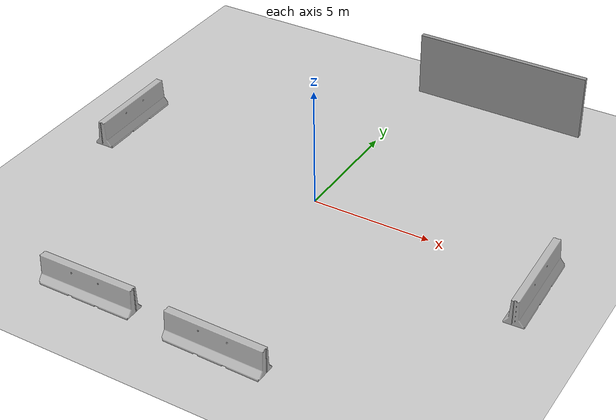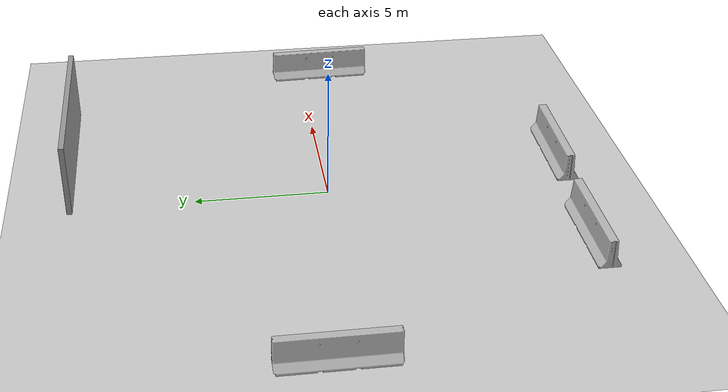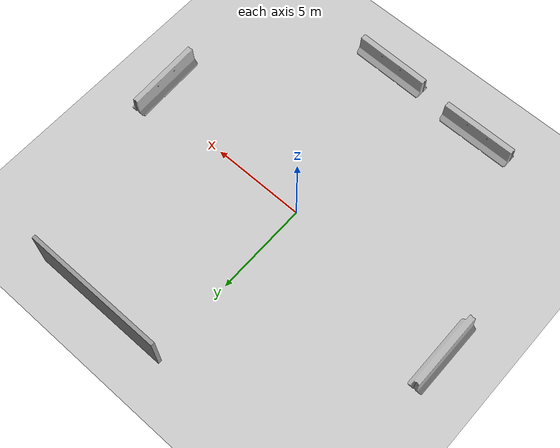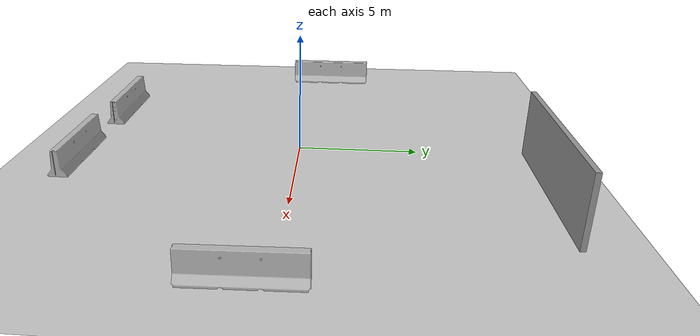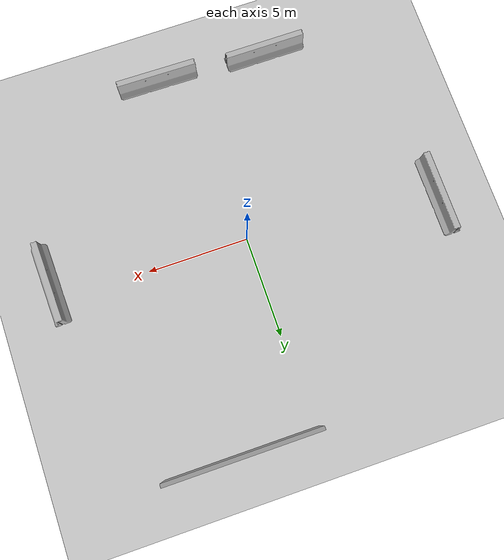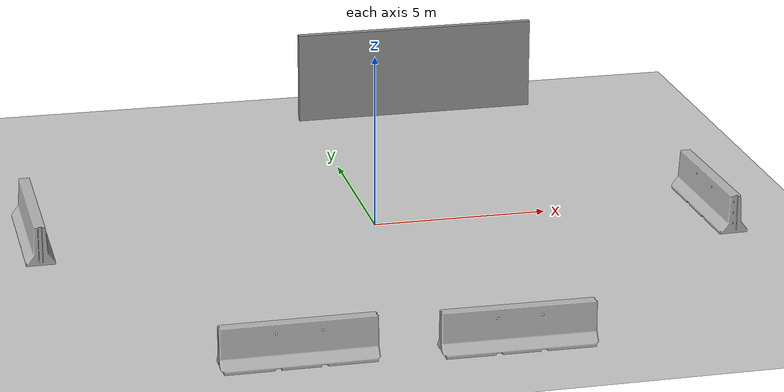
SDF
<sdf version="1.4">
 <world name="default">
  <light name="sun" type="directional">
   <pose>0 0 10 0 -0 0</pose>
   <diffuse>0.8 0.8 0.8 1</diffuse>
   <specular>0.2 0.2 0.2 1</specular>
   <attenuation>
    <range>1000</range>
    <constant>0.9</constant>
    <linear>0.01</linear>
    <quadratic>0.001</quadratic>
   </attenuation>
   <direction>-0.5 0.1 -0.9</direction>
  </light>
  <model name="ground_plane">
   <static>1</static>
   <link name="link">
    <collision name="collision">
     <geometry><plane><normal>0 0 1</normal><size>100 100</size></plane></geometry>
     <surface><friction><ode><mu>100</mu><mu2>50</mu2></ode></friction></surface>
    </collision>
    <visual name="visual">
     <cast_shadows>0</cast_shadows>
     <geometry><plane><normal>0 0 1</normal><size>100 100</size></plane></geometry>
     <material>
      <script><uri>file://media/materials/scripts/gazebo.material</uri><name>Gazebo/Grey</name></script>
     </material>
    </visual>
    <velocity_decay><linear>0</linear><angular>0</angular></velocity_decay>
   </link>
  </model>
  <physics type="ode">
   <max_step_size>0.001</max_step_size>
   <real_time_factor>1</real_time_factor>
   <real_time_update_rate>1000</real_time_update_rate>
   <gravity>0 0 -9.8</gravity>
  </physics>
  <scene><ambient>0.4 0.4 0.4 1</ambient><background>0.7 0.7 0.7 1</background><shadows>1</shadows></scene>
  <model name="jersey_barrier">
   <static>1</static>
   <link name="link">
    <visual name="visual">
     <geometry><mesh><uri>model://jersey_barrier/meshes/jersey_barrier.dae</uri></mesh></geometry>
    </visual>
    <collision name="upright">
     <pose>0 0 0.5715 0 -0 0</pose>
     <geometry><box><size>4.06542 0.3063 1.143</size></box></geometry>
    </collision>
    <collision name="base">
     <pose>0 0 0.032258 0 -0 0</pose>
     <geometry><box><size>4.06542 0.8107 0.064516</size></box></geometry>
    </collision>
    <collision name="base2">
     <pose>0 0 0.1 0 -0 0</pose>
     <geometry><box><size>4.06542 0.65 0.1</size></box></geometry>
    </collision>
    <collision name="base3">
     <pose>0 0 0.2 0 -0 0</pose>
     <geometry><box><size>4.06542 0.5 0.1</size></box></geometry>
    </collision>
    <collision name="left-angle">
     <pose>0 -0.224 0.2401 0.9 -0 0</pose>
     <geometry><box><size>4.06542 0.5 0.064516</size></box></geometry>
    </collision>
    <collision name="right-angle">
     <pose>0 0.224 0.2401 -0.9 0 0</pose>
     <geometry><box><size>4.06542 0.5 0.064516</size></box></geometry>
    </collision>
    <velocity_decay><linear>0</linear><angular>0</angular></velocity_decay>
   </link>
   <pose>1.64285 -9.28079 0 0 0 -0.014226</pose>
  </model>
  <model name="jersey_barrier_0">
   <static>1</static>
   <link name="link">
    <visual name="visual">
     <geometry><mesh><uri>model://jersey_barrier/meshes/jersey_barrier.dae</uri></mesh></geometry>
    </visual>
    <collision name="upright">
     <pose>0 0 0.5715 0 -0 0</pose>
     <geometry><box><size>4.06542 0.3063 1.143</size></box></geometry>
    </collision>
    <collision name="base">
     <pose>0 0 0.032258 0 -0 0</pose>
     <geometry><box><size>4.06542 0.8107 0.064516</size></box></geometry>
    </collision>
    <collision name="base2">
     <pose>0 0 0.1 0 -0 0</pose>
     <geometry><box><size>4.06542 0.65 0.1</size></box></geometry>
    </collision>
    <collision name="base3">
     <pose>0 0 0.2 0 -0 0</pose>
     <geometry><box><size>4.06542 0.5 0.1</size></box></geometry>
    </collision>
    <collision name="left-angle">
     <pose>0 -0.224 0.2401 0.9 -0 0</pose>
     <geometry><box><size>4.06542 0.5 0.064516</size></box></geometry>
    </collision>
    <collision name="right-angle">
     <pose>0 0.224 0.2401 -0.9 0 0</pose>
     <geometry><box><size>4.06542 0.5 0.064516</size></box></geometry>
    </collision>
    <velocity_decay><linear>0</linear><angular>0</angular></velocity_decay>
   </link>
   <pose>9.69245 -0.892136 0 0 -0 1.6</pose>
  </model>
  <model name="grey_wall">
   <static>1</static>
   <link name="link">
    <pose>0 0 1.4 0 -0 0</pose>
    <collision name="collision"><geometry><box><size>7.5 0.2 2.8</size></box></geometry></collision>
    <visual name="visual">
     <cast_shadows>0</cast_shadows>
     <geometry><box><size>7.5 0.2 2.8</size></box></geometry>
     <material>
      <script>
       <uri>model://grey_wall/materials/scripts</uri>
       <uri>model://grey_wall/materials/textures</uri>
       <name>vrc/grey_wall</name>
      </script>
     </material>
    </visual>
    <velocity_decay><linear>0</linear><angular>0</angular></velocity_decay>
   </link>
   <pose>3.46841 9.60665 0 0 -0 0</pose>
  </model>
  <spherical_coordinates>
   <surface_model>EARTH_WGS84</surface_model>
   <latitude_deg>0</latitude_deg>
   <longitude_deg>0</longitude_deg>
   <elevation>0</elevation>
   <heading_deg>0</heading_deg>
  </spherical_coordinates>
  <model name="jersey_barrier_1">
   <static>1</static>
   <link name="link">
    <visual name="visual">
     <geometry><mesh><uri>model://jersey_barrier/meshes/jersey_barrier.dae</uri></mesh></geometry>
    </visual>
    <collision name="upright">
     <pose>0 0 0.5715 0 -0 0</pose>
     <geometry><box><size>4.06542 0.3063 1.143</size></box></geometry>
    </collision>
    <collision name="base">
     <pose>0 0 0.032258 0 -0 0</pose>
     <geometry><box><size>4.06542 0.8107 0.064516</size></box></geometry>
    </collision>
    <collision name="base2">
     <pose>0 0 0.1 0 -0 0</pose>
     <geometry><box><size>4.06542 0.65 0.1</size></box></geometry>
    </collision>
    <collision name="base3">
     <pose>0 0 0.2 0 -0 0</pose>
     <geometry><box><size>4.06542 0.5 0.1</size></box></geometry>
    </collision>
    <collision name="left-angle">
     <pose>0 -0.224 0.2401 0.9 -0 0</pose>
     <geometry><box><size>4.06542 0.5 0.064516</size></box></geometry>
    </collision>
    <collision name="right-angle">
     <pose>0 0.224 0.2401 -0.9 0 0</pose>
     <geometry><box><size>4.06542 0.5 0.064516</size></box></geometry>
    </collision>
    <velocity_decay><linear>0</linear><angular>0</angular></velocity_decay>
   </link>
   <pose>-4 -9 0 0 -0 0</pose>
  </model>
  <model name="jersey_barrier_2">
   <static>1</static>
   <link name="link">
    <visual name="visual">
     <geometry><mesh><uri>model://jersey_barrier/meshes/jersey_barrier.dae</uri></mesh></geometry>
    </visual>
    <collision name="upright">
     <pose>0 0 0.5715 0 -0 0</pose>
     <geometry><box><size>4.06542 0.3063 1.143</size></box></geometry>
    </collision>
    <collision name="base">
     <pose>0 0 0.032258 0 -0 0</pose>
     <geometry><box><size>4.06542 0.8107 0.064516</size></box></geometry>
    </collision>
    <collision name="base2">
     <pose>0 0 0.1 0 -0 0</pose>
     <geometry><box><size>4.06542 0.65 0.1</size></box></geometry>
    </collision>
    <collision name="base3">
     <pose>0 0 0.2 0 -0 0</pose>
     <geometry><box><size>4.06542 0.5 0.1</size></box></geometry>
    </collision>
    <collision name="left-angle">
     <pose>0 -0.224 0.2401 0.9 -0 0</pose>
     <geometry><box><size>4.06542 0.5 0.064516</size></box></geometry>
    </collision>
    <collision name="right-angle">
     <pose>0 0.224 0.2401 -0.9 0 0</pose>
     <geometry><box><size>4.06542 0.5 0.064516</size></box></geometry>
    </collision>
    <velocity_decay><linear>0</linear><angular>0</angular></velocity_decay>
   </link>
   <pose>-9.60803 0.971089 0 0 -0 1.5725</pose>
  </model>
 </world>
</sdf>
